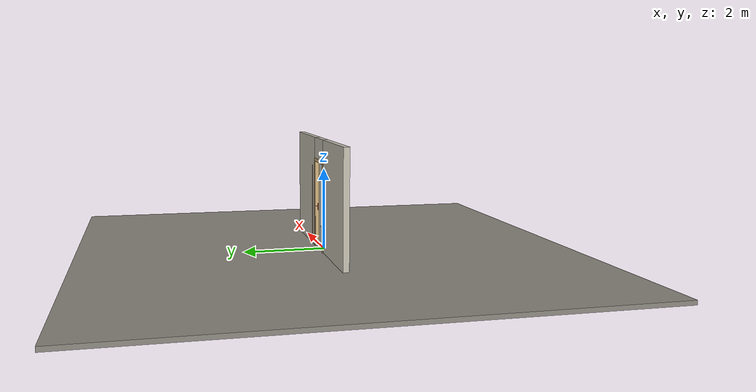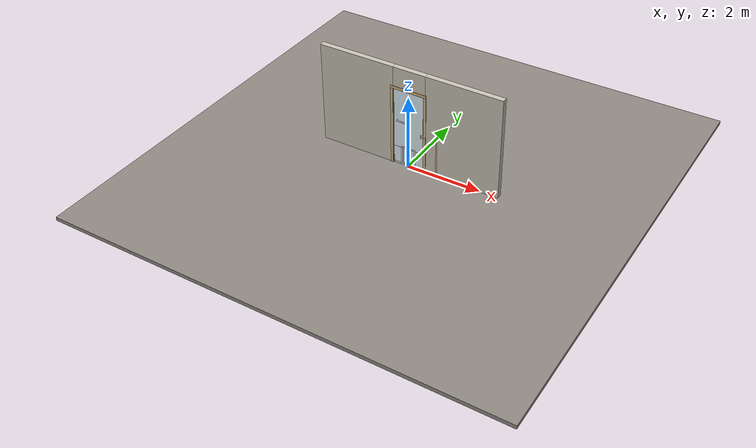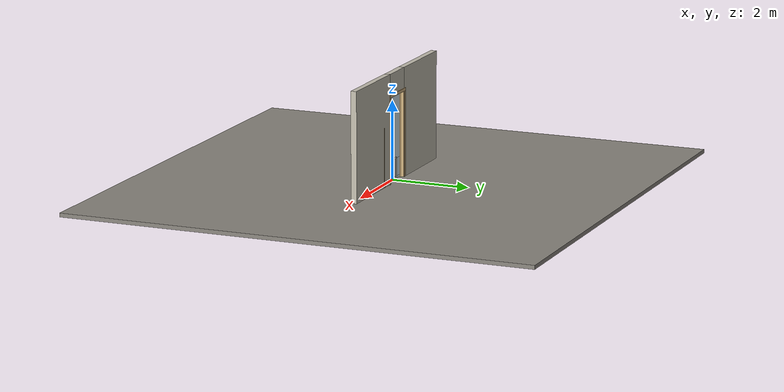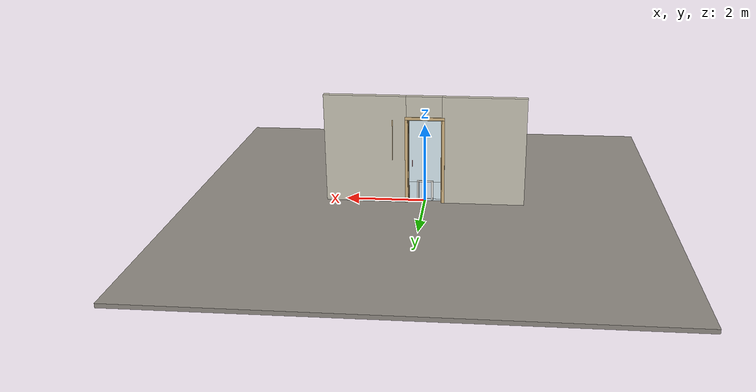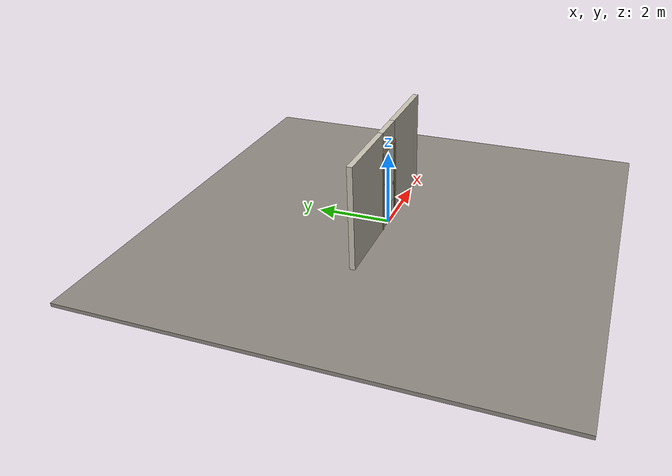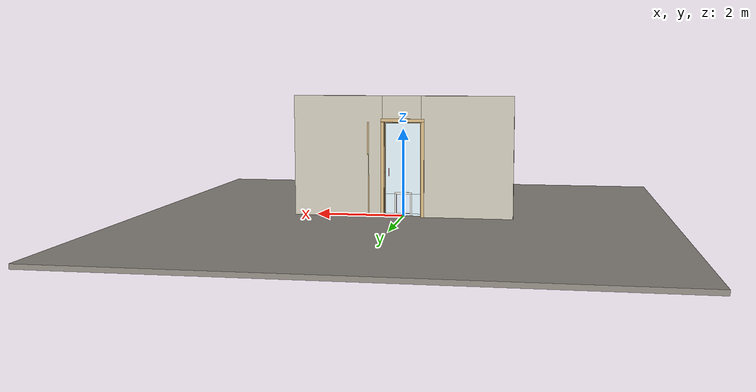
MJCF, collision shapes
<?xml version="1.0" ?>
<mujoco model="db0199_swing_single_full">
  <compiler angle="radian" meshdir="../../hardware" texturedir="../../textures" autolimits="true" inertiafromgeom="false"/>
  <option timestep="0.002" integrator="implicitfast" cone="elliptic" impratio="10" noslip_iterations="3">
    <flag multiccd="enable"/>
  </option>
  <size memory="16M"/>
  <default>
    <geom condim="4" solref="0.005 1" solimp="0.95 0.99 0.001"/>
    <joint solreflimit="0.005 1" solimplimit="0.95 0.99 0.001"/>
    <tendon solreflimit="0.005 1"/>
    <equality solref="0.002 1"/>
  </default>
  <visual>
    <headlight ambient="0.4 0.4 0.4" diffuse="0.7 0.7 0.7" specular="0.2 0.2 0.2"/>
    <quality shadowsize="4096"/>
    <map znear="0.01" zfar="60"/>
  </visual>
  <asset>
    <mesh name="hinge_cd446677f5" file="hinge_cd446677f5.obj"/>
    <mesh name="hinge_jamb_4c4cd7f884" file="hinge_jamb_4c4cd7f884.obj"/>
    <mesh name="pull_1e5d69a91a" file="pull_1e5d69a91a.obj"/>
    <mesh name="wreath_86a3f1bf8b" file="wreath_86a3f1bf8b.obj"/>
    <material name="mat_floor" rgba="0.55 0.53 0.5 1" specular="0.2" shininess="0.15" reflectance="0"/>
    <material name="mat_wall" rgba="0.78 0.76 0.7 1" specular="0.2" shininess="0.1" reflectance="0"/>
    <material name="mat_leaf" rgba="0.85 0.92 0.95 0.25" specular="0.2" shininess="0.95" reflectance="0.1"/>
    <material name="mat_glass" rgba="0.9 0.93 0.95 0.6" specular="0.2" shininess="0.5" reflectance="0.1"/>
    <material name="mat_hinge" rgba="0.65 0.66 0.68 1" specular="0.74" shininess="0.5" reflectance="0.36"/>
    <material name="mat_op_aluminum" rgba="0.8 0.81 0.83 1" specular="0.8" shininess="0.6" reflectance="0.4"/>
    <material name="mat_op_stainless" rgba="0.75 0.76 0.77 1" specular="0.8" shininess="0.65" reflectance="0.4"/>
    <material name="mat_bolt" rgba="0.85 0.66 0.3 1" specular="0.8" shininess="0.75" reflectance="0.4"/>
    <material name="mat_frame" rgba="0.82 0.7 0.5 1" specular="0.2" shininess="0.45" reflectance="0"/>
    <material name="mat_seal" rgba="0.1 0.1 0.1 1" specular="0.2" shininess="0.1" reflectance="0"/>
    <material name="mat_closer" rgba="0.8 0.81 0.83 1" specular="0.8" shininess="0.6" reflectance="0.4"/>
    <material name="mat_wreath" rgba="0.12 0.3 0.12 1" specular="0.2" shininess="0.05" reflectance="0"/>
    <material name="mat_wreath_hook" rgba="0.85 0.66 0.3 1" specular="0.8" shininess="0.75" reflectance="0.4"/>
    <material name="mat_sidelite" rgba="0.85 0.92 0.95 0.25" specular="0.2" shininess="0.95" reflectance="0.1"/>
    <material name="mat_petframe" rgba="0.92 0.92 0.9 1" specular="0.2" shininess="0.6" reflectance="0"/>
    <material name="mat_petflap" rgba="0.85 0.9 0.95 0.45" specular="0.2" shininess="0.7" reflectance="0.1"/>
    <texture name="skybox" type="skybox" builtin="gradient" rgb1="0.6 0.7 0.85" rgb2="0.9 0.92 0.95" width="256" height="256"/>
  </asset>
  <worldbody>
    <light name="sun" pos="1.5 -2.5 4" dir="-0.3 0.5 -0.8" directional="true" diffuse="0.8 0.8 0.8" specular="0.3 0.3 0.3" castshadow="true"/>
    <light name="fill" pos="-1.5 2.5 3" dir="0.3 -0.5 -0.7" directional="true" diffuse="0.35 0.35 0.4" castshadow="false"/>
    <camera name="robot_view" pos="0 -2.584812 1.812087" xyaxes="1 0 0 0 0.26963 0.962964" fovy="52"/>
    <camera name="far_view" pos="0 2.690812 1.812087" xyaxes="-1 0 0 0 -0.26963 0.962964" fovy="52"/>
    <camera name="iso" pos="2.004737 -2.162762 2.234138" xyaxes="0.741536 0.670913 0 -0.242917 0.268487 0.932151" fovy="46"/>
    <camera name="detail_handle" pos="0.496 -0.7275 1.296" xyaxes="0.97561 0.219512 0 -0.070934 0.315262 0.94635" fovy="38"/>
    <geom name="floor" type="box" size="6 6 0.05" pos="0 0 -0.05" material="mat_floor" group="0" contype="1" conaffinity="1" friction="0.8 0.005 0.0001" density="2400"/>
    <geom name="wall_left" type="box" size="1.0355 0.0725 1.3735" pos="-1.4645 0.053 1.3735" material="mat_wall" group="0" contype="1" conaffinity="1" friction="0.6 0.005 0.0001" density="800"/>
    <geom name="wall_right" type="box" size="1.0205 0.0725 1.3735" pos="1.4795 0.053 1.3735" material="mat_wall" group="0" contype="1" conaffinity="1" friction="0.6 0.005 0.0001" density="800"/>
    <geom name="wall_header" type="box" size="0.444 0.0725 0.2755" pos="0.015 0.053 2.4715" material="mat_wall" group="0" contype="1" conaffinity="1" friction="0.6 0.005 0.0001" density="800"/>
    <geom name="hinge_0_jamb" type="mesh" mesh="hinge_jamb_4c4cd7f884" pos="-0.407 -0.0195 0.259" material="mat_hinge" group="1" contype="0" conaffinity="0" density="7850"/>
    <geom name="hinge_1_jamb" type="mesh" mesh="hinge_jamb_4c4cd7f884" pos="-0.407 -0.0195 1.076" material="mat_hinge" group="1" contype="0" conaffinity="0" density="7850"/>
    <geom name="hinge_2_jamb" type="mesh" mesh="hinge_jamb_4c4cd7f884" pos="-0.407 -0.0195 1.963" material="mat_hinge" group="1" contype="0" conaffinity="0" density="7850"/>
    <geom name="jamb_hinge" type="box" size="0.0095 0.0725 1.0735" pos="-0.4195 0.053 1.0735" material="mat_frame" group="0" contype="1" conaffinity="1" friction="0.6 0.005 0.0001" density="400"/>
    <geom name="strike_1016_wall_n" type="box" size="0.0245 0.06 0.0115" pos="0.4345 0.0655 1.016" material="mat_frame" group="0" contype="1" conaffinity="1" friction="0.6 0.005 0.0001" density="400"/>
    <geom name="strike_1016_wall_p" type="box" size="0.0245 0.008 0.0115" pos="0.4345 -0.0135 1.016" material="mat_frame" group="0" contype="1" conaffinity="1" friction="0.6 0.005 0.0001" density="400"/>
    <geom name="strike_1016_ramp" type="box" size="0.0245 0.015977 0.0115" pos="0.438502 -0.028066 1.016" quat="0.984601 0 0 0.174819" material="mat_frame" group="0" contype="1" conaffinity="1" friction="0.12 0.005 0.0001" density="400"/>
    <geom name="strike_1016_back" type="box" size="0.0175 0.0055 0.0115" pos="0.4415 0 1.016" material="mat_frame" group="0" contype="1" conaffinity="1" friction="0.6 0.005 0.0001" density="400"/>
    <geom name="jamb_strike_0" type="box" size="0.0245 0.0725 0.50225" pos="0.4345 0.053 0.50225" material="mat_frame" group="0" contype="1" conaffinity="1" friction="0.6 0.005 0.0001" density="400"/>
    <geom name="jamb_strike_1" type="box" size="0.0245 0.0725 0.55975" pos="0.4345 0.053 1.58725" material="mat_frame" group="0" contype="1" conaffinity="1" friction="0.6 0.005 0.0001" density="400"/>
    <geom name="jamb_head" type="box" size="0.444 0.0725 0.0095" pos="0.015 0.053 2.1565" material="mat_frame" group="0" contype="1" conaffinity="1" friction="0.6 0.005 0.0001" density="400"/>
    <geom name="head_stud" type="box" size="0.444 0.0725 0.015" pos="0.015 0.053 2.181" material="mat_wall" group="0" contype="1" conaffinity="1" friction="0.6 0.005 0.0001" density="500"/>
    <geom name="stop_hinge" type="box" size="0.0055 0.016 1.0735" pos="-0.4045 0.029 1.0735" material="mat_frame" group="0" contype="1" conaffinity="1" friction="0.6 0.005 0.0001" density="400"/>
    <geom name="stop_strike" type="box" size="0.0055 0.016 1.0735" pos="0.4045 0.029 1.0735" material="mat_frame" group="0" contype="1" conaffinity="1" friction="0.6 0.005 0.0001" density="400"/>
    <geom name="stop_head" type="box" size="0.41 0.016 0.0055" pos="0 0.029 2.1415" material="mat_frame" group="0" contype="1" conaffinity="1" friction="0.6 0.005 0.0001" density="400"/>
    <geom name="seal_hinge" type="box" size="0.004 0.003 1.0735" pos="-0.407 0.0155 1.0735" material="mat_seal" group="1" contype="0" conaffinity="0" density="1100"/>
    <geom name="seal_strike" type="box" size="0.004 0.003 1.0735" pos="0.407 0.0155 1.0735" material="mat_seal" group="1" contype="0" conaffinity="0" density="1100"/>
    <geom name="seal_head" type="box" size="0.39 0.003 0.008" pos="0 0.0155 2.135" material="mat_seal" group="1" contype="0" conaffinity="0" density="1100"/>
    <geom name="casing_l_n" type="box" size="0.035 0.008 1.083" pos="-0.459 -0.0275 1.0735" material="mat_frame" group="2" contype="0" conaffinity="0" density="400"/>
    <geom name="casing_r_n" type="box" size="0.035 0.008 1.083" pos="0.459 -0.0275 1.0735" material="mat_frame" group="2" contype="0" conaffinity="0" density="400"/>
    <geom name="casing_h_n" type="box" size="0.494 0.008 0.035" pos="0 -0.0275 2.196" material="mat_frame" group="2" contype="0" conaffinity="0" density="400"/>
    <geom name="casing_l_p" type="box" size="0.035 0.008 1.083" pos="-0.459 0.1335 1.0735" material="mat_frame" group="2" contype="0" conaffinity="0" density="400"/>
    <geom name="casing_r_p" type="box" size="0.035 0.008 1.083" pos="0.459 0.1335 1.0735" material="mat_frame" group="2" contype="0" conaffinity="0" density="400"/>
    <geom name="casing_h_p" type="box" size="0.494 0.008 0.035" pos="0 0.1335 2.196" material="mat_frame" group="2" contype="0" conaffinity="0" density="400"/>
    <geom name="sidelite_glass" type="box" size="0.15 0.003 1.0235" pos="0.62 0 1.0735" material="mat_sidelite" group="0" contype="1" conaffinity="1" friction="0.6 0.005 0.0001" density="2500"/>
    <geom name="sidelite_frame" type="box" size="0.02 0.0725 1.0735" pos="0.79 0.053 1.0735" material="mat_frame" group="0" contype="1" conaffinity="1" friction="0.6 0.005 0.0001" density="600"/>
    <site name="approach_point" pos="0 -1.5 0" quat="1 0 0 0" size="0.05" rgba="0.2 0.9 0.2 0.5" group="4"/>
    <site name="goal_point" pos="0 1.5 0" quat="1 0 0 0" size="0.05" rgba="0.2 0.9 0.2 0.5" group="4"/>
    <site name="door_plane_center" pos="0 0 1.0735" quat="1 0 0 0" size="0.02" rgba="0.2 0.9 0.2 0.5" group="4"/>
    <body name="leaf" pos="-0.41 0 0">
      <inertial pos="0.405603 -0.005698 1.075799" mass="32.268737" quat="0.502953 0.500495 0.504355 -0.492106" diaginertia="1.761610804 11.800491333 13.527893027"/>
      <joint name="leaf_hinge" type="hinge" axis="0 0 -1" pos="0.003 -0.0195 0" limited="true" range="0 1.745329" solreflimit="0.02 1" damping="4.168374" frictionloss="1.139711" stiffness="3" springref="-1.23" armature="0.02"/>
      <geom name="leaf_slab_below" type="box" size="0.4065 0.0125 0.0245" pos="0.4095 0 0.0335" material="mat_leaf" group="0" contype="1" conaffinity="1" friction="0.4 0.005 0.0001" density="1"/>
      <geom name="leaf_slab_above" type="box" size="0.4065 0.0125 0.8165" pos="0.4095 0 1.3265" material="mat_leaf" group="0" contype="1" conaffinity="1" friction="0.4 0.005 0.0001" density="1"/>
      <geom name="leaf_slab_left" type="box" size="0.12275 0.0125 0.226" pos="0.12575 0 0.284" material="mat_leaf" group="0" contype="1" conaffinity="1" friction="0.4 0.005 0.0001" density="1"/>
      <geom name="leaf_slab_right" type="box" size="0.12275 0.0125 0.226" pos="0.69325 0 0.284" material="mat_leaf" group="0" contype="1" conaffinity="1" friction="0.4 0.005 0.0001" density="1"/>
      <geom name="hinge_0" type="mesh" mesh="hinge_cd446677f5" pos="0.003 -0.0195 0.259" material="mat_hinge" group="1" contype="0" conaffinity="0" density="7850"/>
      <geom name="hinge_1" type="mesh" mesh="hinge_cd446677f5" pos="0.003 -0.0195 1.076" material="mat_hinge" group="1" contype="0" conaffinity="0" density="7850"/>
      <geom name="hinge_2" type="mesh" mesh="hinge_cd446677f5" pos="0.003 -0.0195 1.963" material="mat_hinge" group="1" contype="0" conaffinity="0" density="7850"/>
      <geom name="leaf_inside_pull_p" type="mesh" mesh="pull_1e5d69a91a" pos="0.726 0.0125 1.016" quat="-0.707107 0.707107 0 0" material="mat_op_stainless" group="1" contype="0" conaffinity="0" density="3000"/>
      <geom name="leaf_inside_pull_col_p" type="capsule" size="0.0095 0.08" pos="0.726 0.0725 1.016" material="mat_op_stainless" group="3" contype="1" conaffinity="1" rgba="0.8 0.3 0.3 0.25" friction="0.7 0.01 0.0001" density="3000"/>
      <geom name="leaf_pushbutton_housing" type="box" size="0.02 0.006 0.045" pos="0.771 -0.0185 1.016" material="mat_op_aluminum" group="1" contype="0" conaffinity="0" density="2700"/>
      <geom name="leaf_latch_bolt_faceplate" type="box" size="0.0006 0.01 0.0215" pos="0.8154 0 1.016" material="mat_bolt" group="1" contype="0" conaffinity="0" density="8500"/>
      <geom name="closer_pneumatic" type="cylinder" size="0.015 0.16" pos="0.25 -0.0425 1.2804" quat="0.707107 0 0.707107 0" material="mat_closer" group="1" contype="0" conaffinity="0" density="2700"/>
      <geom name="closer_pneumatic_bracket_0" type="box" size="0.008 0.016 0.018" pos="0.1 -0.0285 1.2804" material="mat_closer" group="1" contype="0" conaffinity="0" density="2700"/>
      <geom name="closer_pneumatic_bracket_1" type="box" size="0.008 0.016 0.018" pos="0.4 -0.0285 1.2804" material="mat_closer" group="1" contype="0" conaffinity="0" density="2700"/>
      <geom name="wreath" type="mesh" mesh="wreath_86a3f1bf8b" pos="0.4095 -0.0125 1.67352" quat="0.707107 0.707107 0 0" material="mat_wreath" group="2" contype="0" conaffinity="0" density="200"/>
      <geom name="wreath_hook" type="cylinder" size="0.004 0.008" pos="0.4095 -0.0195 1.86152" quat="0.707107 -0.707107 0 0" material="mat_wreath_hook" group="2" contype="0" conaffinity="0" density="8500"/>
      <geom name="pet_frame_top" type="box" size="0.2 0.0185 0.02" pos="0.4095 0 0.529" material="mat_petframe" group="2" contype="0" conaffinity="0" density="1200"/>
      <geom name="pet_frame_l" type="box" size="0.02 0.0185 0.265" pos="0.2295 0 0.284" material="mat_petframe" group="2" contype="0" conaffinity="0" density="1200"/>
      <geom name="pet_frame_r" type="box" size="0.02 0.0185 0.265" pos="0.5895 0 0.284" material="mat_petframe" group="2" contype="0" conaffinity="0" density="1200"/>
      <site name="leaf_inside_pull_grip_p" pos="0.726 0.0725 1.016" quat="1 0 0 0" size="0.012" rgba="0.2 0.9 0.2 0.5" group="4"/>
      <site name="leaf_edge_mid" pos="0.816 0 1.067" quat="1 0 0 0" size="0.02" rgba="0.2 0.9 0.2 0.5" group="4"/>
      <body name="leaf_pushbutton" pos="0.771 -0.0225 1.016">
        <inertial pos="0 -0.006 0" mass="0.010179" quat="0 0 0.707107 0.707107" diaginertia="0.000000377 0.000000377 0.000000509"/>
        <joint name="leaf_pushbutton_slide" type="slide" axis="0 1 0" limited="true" range="0 0.006" damping="16.008936" frictionloss="0.5" stiffness="400" springref="-0.0075" armature="0.15"/>
        <geom name="leaf_pushbutton_geom" type="cylinder" size="0.01 0.006" pos="0 -0.006 0" quat="0.707107 -0.707107 0 0" material="mat_op_aluminum" group="0" contype="1" conaffinity="1" friction="0.6 0.005 0.0001" density="2700"/>
        <site name="leaf_push" pos="0 -0.012 0" quat="1 0 0 0" size="0.01" rgba="0.2 0.9 0.2 0.5" group="4"/>
      </body>
      <body name="leaf_latch_bolt" pos="0.816 0 1.016">
        <inertial pos="-0.008 0 0" mass="0.014242" quat="0 0 0.707107 0.707107" diaginertia="0.00000011 0.000001386 0.000001386"/>
        <joint name="leaf_latch_bolt_slide" type="slide" axis="-1 0 0" limited="true" range="0 0.01" damping="2" frictionloss="0.3" stiffness="300" springref="-0.006667" armature="0.1"/>
        <geom name="leaf_latch_bolt_capsule" type="capsule" size="0.004 0.014" pos="-0.008 0 0" quat="0.707107 0 0.707107 0" material="mat_bolt" group="0" contype="1" conaffinity="1" friction="0.2 0.005 0.0001" density="8500"/>
      </body>
      <body name="pet_flap" pos="0.4095 0 0.509">
        <inertial pos="0 0 -0.225" mass="0.357218" quat="-0.5 0.5 0.5 0.5" diaginertia="0.002898232 0.005816111 0.008713391"/>
        <joint name="pet_flap_hinge" type="hinge" axis="1 0 0" limited="true" range="-1.45 1.45" damping="0.02" frictionloss="0.02" armature="0.005"/>
        <geom name="pet_flap_geom" type="box" size="0.156 0.002 0.221" pos="0 0 -0.225" material="mat_petflap" group="0" contype="1" conaffinity="1" friction="0.6 0.005 0.0001" density="1250"/>
      </body>
    </body>
  </worldbody>
  <tendon>
    <fixed name="leaf_latch_bolt_coupling" limited="true" range="0 10">
      <joint joint="leaf_latch_bolt_slide" coef="1"/>
      <joint joint="leaf_pushbutton_slide" coef="-2"/>
    </fixed>
  </tendon>
  <sensor>
    <jointpos name="leaf_hinge_pos" joint="leaf_hinge"/>
    <jointvel name="leaf_hinge_vel" joint="leaf_hinge"/>
    <jointpos name="leaf_pushbutton_slide_pos" joint="leaf_pushbutton_slide"/>
    <jointvel name="leaf_pushbutton_slide_vel" joint="leaf_pushbutton_slide"/>
    <jointpos name="leaf_latch_bolt_slide_pos" joint="leaf_latch_bolt_slide"/>
    <jointvel name="leaf_latch_bolt_slide_vel" joint="leaf_latch_bolt_slide"/>
    <jointpos name="pet_flap_hinge_pos" joint="pet_flap_hinge"/>
    <jointvel name="pet_flap_hinge_vel" joint="pet_flap_hinge"/>
  </sensor>
</mujoco>
